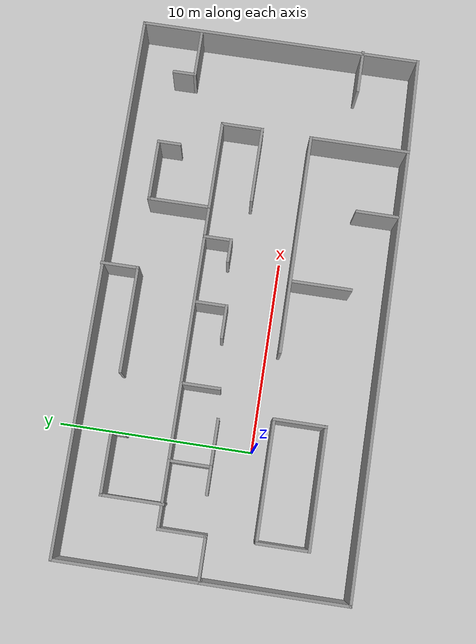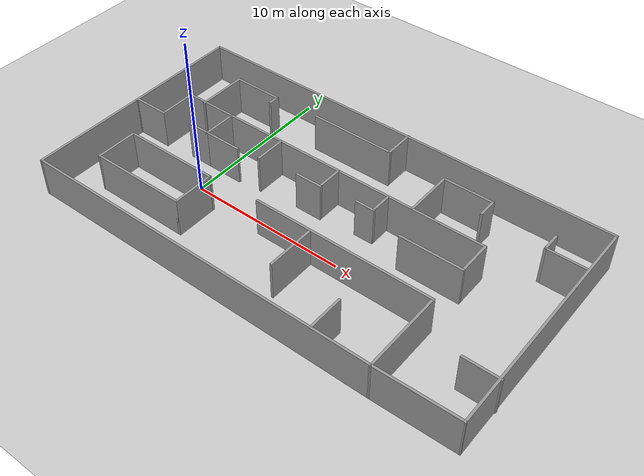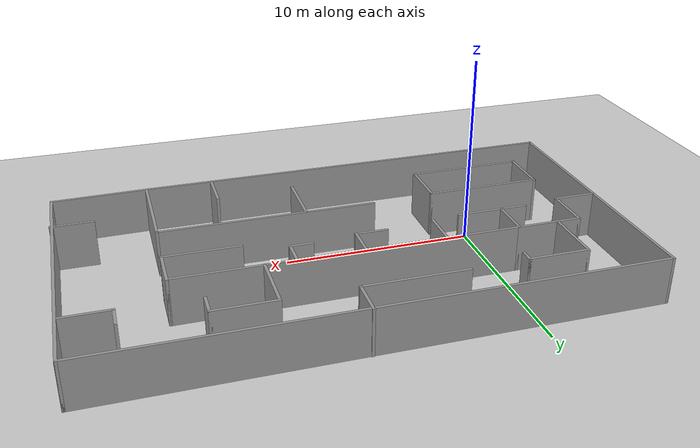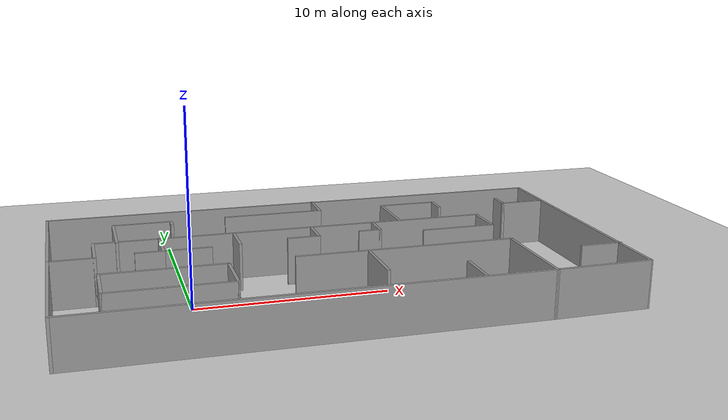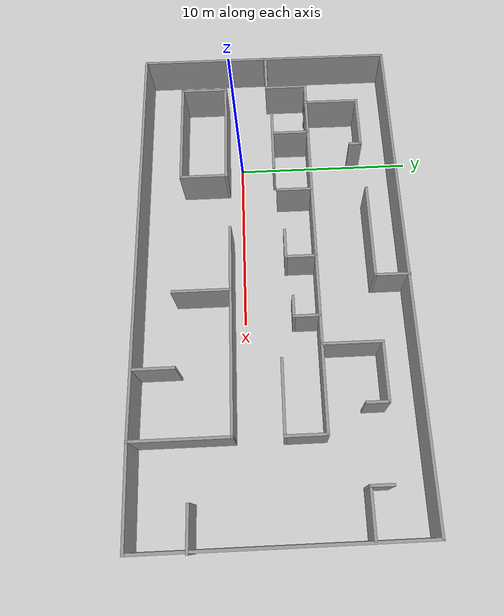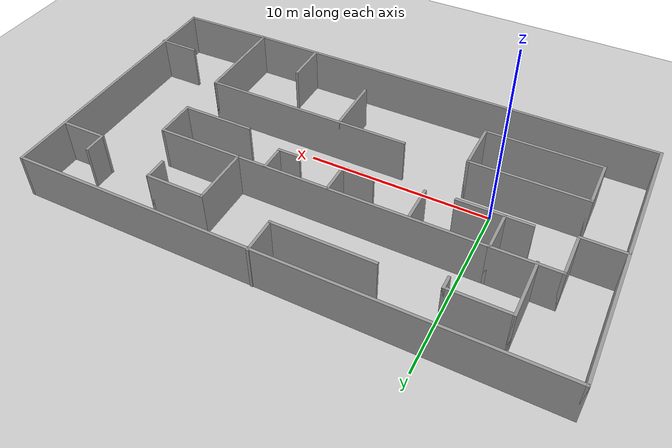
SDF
<?xml version='1.0'?>
<sdf version='1.6'>
<world name="my_map">
    <!-- A global light source -->
    <include>
      <uri>model://sun</uri>
    </include>
    <!-- A ground plane -->
    <include>
      <uri>model://ground_plane</uri>
    </include>

  <model name='map1_world'>
    <pose frame=''>7.43439 1.62187 0 0 -0 0</pose>
    <link name='Wall_0'>
      <collision name='Wall_0_Collision'>
        <geometry>
          <box>
            <size>2.75 0.15 2.5</size>
          </box>
        </geometry>
        <pose frame=''>0 0 1.25 0 -0 0</pose>
      </collision>
      <visual name='Wall_0_Visual'>
        <pose frame=''>0 0 1.25 0 -0 0</pose>
        <geometry>
          <box>
            <size>2.75 0.15 2.5</size>
          </box>
        </geometry>
        <material>
          <script>
            <uri>file://media/materials/scripts/gazebo.material</uri>
            <name>Gazebo/Grey</name>
          </script>
          <ambient>1 1 1 1</ambient>
        </material>
        <meta>
          <layer>0</layer>
        </meta>
      </visual>
      <pose frame=''>-11.8144 -3.75187 0 0 -0 1.5708</pose>
    </link>
    <link name='Wall_1'>
      <collision name='Wall_1_Collision'>
        <geometry>
          <box>
            <size>6.25 0.15 2.5</size>
          </box>
        </geometry>
        <pose frame=''>0 0 1.25 0 -0 0</pose>
      </collision>
      <visual name='Wall_1_Visual'>
        <pose frame=''>0 0 1.25 0 -0 0</pose>
        <geometry>
          <box>
            <size>6.25 0.15 2.5</size>
          </box>
        </geometry>
        <material>
          <script>
            <uri>file://media/materials/scripts/gazebo.material</uri>
            <name>Gazebo/Grey</name>
          </script>
          <ambient>1 1 1 1</ambient>
        </material>
        <meta>
          <layer>0</layer>
        </meta>
      </visual>
      <pose frame=''>-8.76439 -2.45187 0 0 -0 0</pose>
    </link>
    <link name='Wall_10'>
      <collision name='Wall_10_Collision'>
        <geometry>
          <box>
            <size>2.25 0.15 2.5</size>
          </box>
        </geometry>
        <pose frame=''>0 0 1.25 0 -0 0</pose>
      </collision>
      <visual name='Wall_10_Visual'>
        <pose frame=''>0 0 1.25 0 -0 0</pose>
        <geometry>
          <box>
            <size>2.25 0.15 2.5</size>
          </box>
        </geometry>
        <material>
          <script>
            <uri>file://media/materials/scripts/gazebo.material</uri>
            <name>Gazebo/Grey</name>
          </script>
          <ambient>1 1 1 1</ambient>
        </material>
        <meta>
          <layer>0</layer>
        </meta>
      </visual>
      <pose frame=''>-8.5074 1.35764 0 0 -0 -1.5708</pose>
    </link>
    <link name='Wall_11'>
      <collision name='Wall_11_Collision'>
        <geometry>
          <box>
            <size>1.5 0.15 2.5</size>
          </box>
        </geometry>
        <pose frame=''>0 0 1.25 0 -0 0</pose>
      </collision>
      <visual name='Wall_11_Visual'>
        <pose frame=''>0 0 1.25 0 -0 0</pose>
        <geometry>
          <box>
            <size>1.5 0.15 2.5</size>
          </box>
        </geometry>
        <material>
          <script>
            <uri>file://media/materials/scripts/gazebo.material</uri>
            <name>Gazebo/Grey</name>
          </script>
          <ambient>1 1 1 1</ambient>
        </material>
        <meta>
          <layer>0</layer>
        </meta>
      </visual>
      <pose frame=''>-9.1824 0.307639 0 0 -0 3.14159</pose>
    </link>
    <link name='Wall_13'>
      <collision name='Wall_13_Collision'>
        <geometry>
          <box>
            <size>2.5 0.15 2.5</size>
          </box>
        </geometry>
        <pose frame=''>0 0 1.25 0 -0 0</pose>
      </collision>
      <visual name='Wall_13_Visual'>
        <pose frame=''>0 0 1.25 0 -0 0</pose>
        <geometry>
          <box>
            <size>2.5 0.15 2.5</size>
          </box>
        </geometry>
        <material>
          <script>
            <uri>file://media/materials/scripts/gazebo.material</uri>
            <name>Gazebo/Grey</name>
          </script>
          <ambient>1 1 1 1</ambient>
        </material>
        <meta>
          <layer>0</layer>
        </meta>
      </visual>
      <pose frame=''>-7.3324 0.307639 0 0 -0 0</pose>
    </link>
    <link name='Wall_15'>
      <collision name='Wall_15_Collision'>
        <geometry>
          <box>
            <size>17.75 0.15 2.5</size>
          </box>
        </geometry>
        <pose frame=''>0 0 1.25 0 -0 0</pose>
      </collision>
      <visual name='Wall_15_Visual'>
        <pose frame=''>0 0 1.25 0 -0 0</pose>
        <geometry>
          <box>
            <size>17.75 0.15 2.5</size>
          </box>
        </geometry>
        <material>
          <script>
            <uri>file://media/materials/scripts/gazebo.material</uri>
            <name>Gazebo/Grey</name>
          </script>
          <ambient>1 1 1 1</ambient>
        </material>
        <meta>
          <layer>0</layer>
        </meta>
      </visual>
      <pose frame=''>0.2926 2.40764 0 0 -0 0</pose>
    </link>
    <link name='Wall_17'>
      <collision name='Wall_17_Collision'>
        <geometry>
          <box>
            <size>2 0.15 2.5</size>
          </box>
        </geometry>
        <pose frame=''>0 0 1.25 0 -0 0</pose>
      </collision>
      <visual name='Wall_17_Visual'>
        <pose frame=''>0 0 1.25 0 -0 0</pose>
        <geometry>
          <box>
            <size>2 0.15 2.5</size>
          </box>
        </geometry>
        <material>
          <script>
            <uri>file://media/materials/scripts/gazebo.material</uri>
            <name>Gazebo/Grey</name>
          </script>
          <ambient>1 1 1 1</ambient>
        </material>
        <meta>
          <layer>0</layer>
        </meta>
      </visual>
      <pose frame=''>-4.62738 1.39632 0 0 -0 -1.5708</pose>
    </link>
    <link name='Wall_19'>
      <collision name='Wall_19_Collision'>
        <geometry>
          <box>
            <size>1.75 0.15 2.5</size>
          </box>
        </geometry>
        <pose frame=''>0 0 1.25 0 -0 0</pose>
      </collision>
      <visual name='Wall_19_Visual'>
        <pose frame=''>0 0 1.25 0 -0 0</pose>
        <geometry>
          <box>
            <size>1.75 0.15 2.5</size>
          </box>
        </geometry>
        <material>
          <script>
            <uri>file://media/materials/scripts/gazebo.material</uri>
            <name>Gazebo/Grey</name>
          </script>
          <ambient>1 1 1 1</ambient>
        </material>
        <meta>
          <layer>0</layer>
        </meta>
      </visual>
      <pose frame=''>-0.436519 1.55191 0 0 -0 -1.5708</pose>
    </link>
    <link name='Wall_20'>
      <collision name='Wall_20_Collision'>
        <geometry>
          <box>
            <size>1.75 0.15 2.5</size>
          </box>
        </geometry>
        <pose frame=''>0 0 1.25 0 -0 0</pose>
      </collision>
      <visual name='Wall_20_Visual'>
        <pose frame=''>0 0 1.25 0 -0 0</pose>
        <geometry>
          <box>
            <size>1.75 0.15 2.5</size>
          </box>
        </geometry>
        <material>
          <script>
            <uri>file://media/materials/scripts/gazebo.material</uri>
            <name>Gazebo/Grey</name>
          </script>
          <ambient>1 1 1 1</ambient>
        </material>
        <meta>
          <layer>0</layer>
        </meta>
      </visual>
      <pose frame=''>-1.23652 0.751906 0 0 -0 3.14159</pose>
    </link>
    <link name='Wall_22'>
      <collision name='Wall_22_Collision'>
        <geometry>
          <box>
            <size>11.5 0.15 2.5</size>
          </box>
        </geometry>
        <pose frame=''>0 0 1.25 0 -0 0</pose>
      </collision>
      <visual name='Wall_22_Visual'>
        <pose frame=''>0 0 1.25 0 -0 0</pose>
        <geometry>
          <box>
            <size>11.5 0.15 2.5</size>
          </box>
        </geometry>
        <material>
          <script>
            <uri>file://media/materials/scripts/gazebo.material</uri>
            <name>Gazebo/Grey</name>
          </script>
          <ambient>1 1 1 1</ambient>
        </material>
        <meta>
          <layer>0</layer>
        </meta>
      </visual>
      <pose frame=''>3.34189 -2.26722 0 0 -0 0</pose>
    </link>
    <link name='Wall_23'>
      <collision name='Wall_23_Collision'>
        <geometry>
          <box>
            <size>5.25 0.15 2.5</size>
          </box>
        </geometry>
        <pose frame=''>0 0 1.25 0 -0 0</pose>
      </collision>
      <visual name='Wall_23_Visual'>
        <pose frame=''>0 0 1.25 0 -0 0</pose>
        <geometry>
          <box>
            <size>5.25 0.15 2.5</size>
          </box>
        </geometry>
        <material>
          <script>
            <uri>file://media/materials/scripts/gazebo.material</uri>
            <name>Gazebo/Grey</name>
          </script>
          <ambient>1 1 1 1</ambient>
        </material>
        <meta>
          <layer>0</layer>
        </meta>
      </visual>
      <pose frame=''>9.01689 -4.81722 0 0 -0 -1.5708</pose>
    </link>
    <link name='Wall_24'>
      <collision name='Wall_24_Collision'>
        <geometry>
          <box>
            <size>23.25 0.15 2.5</size>
          </box>
        </geometry>
        <pose frame=''>0 0 1.25 0 -0 0</pose>
      </collision>
      <visual name='Wall_24_Visual'>
        <pose frame=''>0 0 1.25 0 -0 0</pose>
        <geometry>
          <box>
            <size>23.25 0.15 2.5</size>
          </box>
        </geometry>
        <material>
          <script>
            <uri>file://media/materials/scripts/gazebo.material</uri>
            <name>Gazebo/Grey</name>
          </script>
          <ambient>1 1 1 1</ambient>
        </material>
        <meta>
          <layer>0</layer>
        </meta>
      </visual>
      <pose frame=''>-2.53311 -7.36722 0 0 -0 3.14159</pose>
    </link>
    <link name='Wall_25'>
      <collision name='Wall_25_Collision'>
        <geometry>
          <box>
            <size>7.5 0.15 2.5</size>
          </box>
        </geometry>
        <pose frame=''>0 0 1.25 0 -0 0</pose>
      </collision>
      <visual name='Wall_25_Visual'>
        <pose frame=''>0 0 1.25 0 -0 0</pose>
        <geometry>
          <box>
            <size>7.5 0.15 2.5</size>
          </box>
        </geometry>
        <material>
          <script>
            <uri>file://media/materials/scripts/gazebo.material</uri>
            <name>Gazebo/Grey</name>
          </script>
          <ambient>1 1 1 1</ambient>
        </material>
        <meta>
          <layer>0</layer>
        </meta>
      </visual>
      <pose frame=''>-14.0831 -3.69222 0 0 -0 1.5708</pose>
    </link>
    <link name='Wall_27'>
      <collision name='Wall_27_Collision'>
        <geometry>
          <box>
            <size>1.5 0.15 2.5</size>
          </box>
        </geometry>
        <pose frame=''>0 0 1.25 0 -0 0</pose>
      </collision>
      <visual name='Wall_27_Visual'>
        <pose frame=''>0 0 1.25 0 -0 0</pose>
        <geometry>
          <box>
            <size>1.5 0.15 2.5</size>
          </box>
        </geometry>
        <material>
          <script>
            <uri>file://media/materials/scripts/gazebo.material</uri>
            <name>Gazebo/Grey</name>
          </script>
          <ambient>1 1 1 1</ambient>
        </material>
        <meta>
          <layer>0</layer>
        </meta>
      </visual>
      <pose frame=''>2.98959 1.7075 0 0 -0 -1.5708</pose>
    </link>
    <link name='Wall_28'>
      <collision name='Wall_28_Collision'>
        <geometry>
          <box>
            <size>1.25 0.15 2.5</size>
          </box>
        </geometry>
        <pose frame=''>0 0 1.25 0 -0 0</pose>
      </collision>
      <visual name='Wall_28_Visual'>
        <pose frame=''>0 0 1.25 0 -0 0</pose>
        <geometry>
          <box>
            <size>1.25 0.15 2.5</size>
          </box>
        </geometry>
        <material>
          <script>
            <uri>file://media/materials/scripts/gazebo.material</uri>
            <name>Gazebo/Grey</name>
          </script>
          <ambient>1 1 1 1</ambient>
        </material>
        <meta>
          <layer>0</layer>
        </meta>
      </visual>
      <pose frame=''>2.43959 1.0325 0 0 -0 3.14159</pose>
    </link>
    <link name='Wall_30'>
      <collision name='Wall_30_Collision'>
        <geometry>
          <box>
            <size>2.25 0.15 2.5</size>
          </box>
        </geometry>
        <pose frame=''>0 0 1.25 0 -0 0</pose>
      </collision>
      <visual name='Wall_30_Visual'>
        <pose frame=''>0 0 1.25 0 -0 0</pose>
        <geometry>
          <box>
            <size>2.25 0.15 2.5</size>
          </box>
        </geometry>
        <material>
          <script>
            <uri>file://media/materials/scripts/gazebo.material</uri>
            <name>Gazebo/Grey</name>
          </script>
          <ambient>1 1 1 1</ambient>
        </material>
        <meta>
          <layer>0</layer>
        </meta>
      </visual>
      <pose frame=''>9.0926 1.35764 0 0 -0 -1.5708</pose>
    </link>
    <link name='Wall_31'>
      <collision name='Wall_31_Collision'>
        <geometry>
          <box>
            <size>4 0.15 2.5</size>
          </box>
        </geometry>
        <pose frame=''>0 0 1.25 0 -0 0</pose>
      </collision>
      <visual name='Wall_31_Visual'>
        <pose frame=''>0 0 1.25 0 -0 0</pose>
        <geometry>
          <box>
            <size>4 0.15 2.5</size>
          </box>
        </geometry>
        <material>
          <script>
            <uri>file://media/materials/scripts/gazebo.material</uri>
            <name>Gazebo/Grey</name>
          </script>
          <ambient>1 1 1 1</ambient>
        </material>
        <meta>
          <layer>0</layer>
        </meta>
      </visual>
      <pose frame=''>7.1676 0.307639 0 0 -0 3.14159</pose>
    </link>
    <link name='Wall_33'>
      <collision name='Wall_33_Collision'>
        <geometry>
          <box>
            <size>2.25 0.15 2.5</size>
          </box>
        </geometry>
        <pose frame=''>0 0 1.25 0 -0 0</pose>
      </collision>
      <visual name='Wall_33_Visual'>
        <pose frame=''>0 0 1.25 0 -0 0</pose>
        <geometry>
          <box>
            <size>2.25 0.15 2.5</size>
          </box>
        </geometry>
        <material>
          <script>
            <uri>file://media/materials/scripts/gazebo.material</uri>
            <name>Gazebo/Grey</name>
          </script>
          <ambient>1 1 1 1</ambient>
        </material>
        <meta>
          <layer>0</layer>
        </meta>
      </visual>
      <pose frame=''>5.46739 -6.20343 0 0 -0 1.5708</pose>
    </link>
    <link name='Wall_35'>
      <collision name='Wall_35_Collision'>
        <geometry>
          <box>
            <size>3.25 0.15 2.5</size>
          </box>
        </geometry>
        <pose frame=''>0 0 1.25 0 -0 0</pose>
      </collision>
      <visual name='Wall_35_Visual'>
        <pose frame=''>0 0 1.25 0 -0 0</pose>
        <geometry>
          <box>
            <size>3.25 0.15 2.5</size>
          </box>
        </geometry>
        <material>
          <script>
            <uri>file://media/materials/scripts/gazebo.material</uri>
            <name>Gazebo/Grey</name>
          </script>
          <ambient>1 1 1 1</ambient>
        </material>
        <meta>
          <layer>0</layer>
        </meta>
      </visual>
      <pose frame=''>1.33771 -3.81722 0 0 -0 -1.5708</pose>
    </link>
    <link name='Wall_37'>
      <collision name='Wall_37_Collision'>
        <geometry>
          <box>
            <size>7.5 0.15 2.5</size>
          </box>
        </geometry>
        <pose frame=''>0 0 1.25 0 -0 0</pose>
      </collision>
      <visual name='Wall_37_Visual'>
        <pose frame=''>0 0 1.25 0 -0 0</pose>
        <geometry>
          <box>
            <size>7.5 0.15 2.5</size>
          </box>
        </geometry>
        <material>
          <script>
            <uri>file://media/materials/scripts/gazebo.material</uri>
            <name>Gazebo/Grey</name>
          </script>
          <ambient>1 1 1 1</ambient>
        </material>
        <meta>
          <layer>0</layer>
        </meta>
      </visual>
      <pose frame=''>-14.0831 3.65778 0 0 -0 1.5708</pose>
    </link>
    <link name='Wall_38'>
      <collision name='Wall_38_Collision'>
        <geometry>
          <box>
            <size>28.25 0.15 2.5</size>
          </box>
        </geometry>
        <pose frame=''>0 0 1.25 0 -0 0</pose>
      </collision>
      <visual name='Wall_38_Visual'>
        <pose frame=''>0 0 1.25 0 -0 0</pose>
        <geometry>
          <box>
            <size>28.25 0.15 2.5</size>
          </box>
        </geometry>
        <material>
          <script>
            <uri>file://media/materials/scripts/gazebo.material</uri>
            <name>Gazebo/Grey</name>
          </script>
          <ambient>1 1 1 1</ambient>
        </material>
        <meta>
          <layer>0</layer>
        </meta>
      </visual>
      <pose frame=''>-0.033113 7.33278 0 0 -0 0</pose>
    </link>
    <link name='Wall_39'>
      <collision name='Wall_39_Collision'>
        <geometry>
          <box>
            <size>14.75 0.15 2.5</size>
          </box>
        </geometry>
        <pose frame=''>0 0 1.25 0 -0 0</pose>
      </collision>
      <visual name='Wall_39_Visual'>
        <pose frame=''>0 0 1.25 0 -0 0</pose>
        <geometry>
          <box>
            <size>14.75 0.15 2.5</size>
          </box>
        </geometry>
        <material>
          <script>
            <uri>file://media/materials/scripts/gazebo.material</uri>
            <name>Gazebo/Grey</name>
          </script>
          <ambient>1 1 1 1</ambient>
        </material>
        <meta>
          <layer>0</layer>
        </meta>
      </visual>
      <pose frame=''>14.0169 0.032781 0 0 -0 -1.5708</pose>
    </link>
    <link name='Wall_4'>
      <collision name='Wall_4_Collision'>
        <geometry>
          <box>
            <size>6.25 0.15 2.5</size>
          </box>
        </geometry>
        <pose frame=''>0 0 1.25 0 -0 0</pose>
      </collision>
      <visual name='Wall_4_Visual'>
        <pose frame=''>0 0 1.25 0 -0 0</pose>
        <geometry>
          <box>
            <size>6.25 0.15 2.5</size>
          </box>
        </geometry>
        <material>
          <script>
            <uri>file://media/materials/scripts/gazebo.material</uri>
            <name>Gazebo/Grey</name>
          </script>
          <ambient>1 1 1 1</ambient>
        </material>
        <meta>
          <layer>0</layer>
        </meta>
      </visual>
      <pose frame=''>-8.76439 -5.05187 0 0 -0 0</pose>
    </link>
    <link name='Wall_40'>
      <collision name='Wall_40_Collision'>
        <geometry>
          <box>
            <size>5.151 0.15 2.5</size>
          </box>
        </geometry>
        <pose frame=''>0 0 1.25 0 -0 0</pose>
      </collision>
      <visual name='Wall_40_Visual'>
        <pose frame=''>0 0 1.25 0 -0 0</pose>
        <geometry>
          <box>
            <size>5.151 0.15 2.5</size>
          </box>
        </geometry>
        <material>
          <script>
            <uri>file://media/materials/scripts/gazebo.material</uri>
            <name>Gazebo/Grey</name>
          </script>
          <ambient>1 1 1 1</ambient>
        </material>
        <meta>
          <layer>0</layer>
        </meta>
      </visual>
      <pose frame=''>11.5169 -7.31722 0 0 -0 -3.1216</pose>
    </link>
    <link name='Wall_42'>
      <collision name='Wall_42_Collision'>
        <geometry>
          <box>
            <size>3.25 0.15 2.5</size>
          </box>
        </geometry>
        <pose frame=''>0 0 1.25 0 -0 0</pose>
      </collision>
      <visual name='Wall_42_Visual'>
        <pose frame=''>0 0 1.25 0 -0 0</pose>
        <geometry>
          <box>
            <size>3.25 0.15 2.5</size>
          </box>
        </geometry>
        <material>
          <script>
            <uri>file://media/materials/scripts/gazebo.material</uri>
            <name>Gazebo/Grey</name>
          </script>
          <ambient>1 1 1 1</ambient>
        </material>
        <meta>
          <layer>0</layer>
        </meta>
      </visual>
      <pose frame=''>-10.6537 3.90191 0 0 -0 1.5708</pose>
    </link>
    <link name='Wall_43'>
      <collision name='Wall_43_Collision'>
        <geometry>
          <box>
            <size>3.25 0.15 2.5</size>
          </box>
        </geometry>
        <pose frame=''>0 0 1.25 0 -0 0</pose>
      </collision>
      <visual name='Wall_43_Visual'>
        <pose frame=''>0 0 1.25 0 -0 0</pose>
        <geometry>
          <box>
            <size>3.25 0.15 2.5</size>
          </box>
        </geometry>
        <material>
          <script>
            <uri>file://media/materials/scripts/gazebo.material</uri>
            <name>Gazebo/Grey</name>
          </script>
          <ambient>1 1 1 1</ambient>
        </material>
        <meta>
          <layer>0</layer>
        </meta>
      </visual>
      <pose frame=''>-9.10366 5.45191 0 0 -0 0</pose>
    </link>
    <link name='Wall_44'>
      <collision name='Wall_44_Collision'>
        <geometry>
          <box>
            <size>0.75 0.15 2.5</size>
          </box>
        </geometry>
        <pose frame=''>0 0 1.25 0 -0 0</pose>
      </collision>
      <visual name='Wall_44_Visual'>
        <pose frame=''>0 0 1.25 0 -0 0</pose>
        <geometry>
          <box>
            <size>0.75 0.15 2.5</size>
          </box>
        </geometry>
        <material>
          <script>
            <uri>file://media/materials/scripts/gazebo.material</uri>
            <name>Gazebo/Grey</name>
          </script>
          <ambient>1 1 1 1</ambient>
        </material>
        <meta>
          <layer>0</layer>
        </meta>
      </visual>
      <pose frame=''>-7.55366 5.15191 0 0 -0 -1.5708</pose>
    </link>
    <link name='Wall_46'>
      <collision name='Wall_46_Collision'>
        <geometry>
          <box>
            <size>2 0.15 2.5</size>
          </box>
        </geometry>
        <pose frame=''>0 0 1.25 0 -0 0</pose>
      </collision>
      <visual name='Wall_46_Visual'>
        <pose frame=''>0 0 1.25 0 -0 0</pose>
        <geometry>
          <box>
            <size>2 0.15 2.5</size>
          </box>
        </geometry>
        <material>
          <script>
            <uri>file://media/materials/scripts/gazebo.material</uri>
            <name>Gazebo/Grey</name>
          </script>
          <ambient>1 1 1 1</ambient>
        </material>
        <meta>
          <layer>0</layer>
        </meta>
      </visual>
      <pose frame=''>0.84827 6.4437 0 0 -0 -1.5708</pose>
    </link>
    <link name='Wall_47'>
      <collision name='Wall_47_Collision'>
        <geometry>
          <box>
            <size>5.5 0.15 2.5</size>
          </box>
        </geometry>
        <pose frame=''>0 0 1.25 0 -0 0</pose>
      </collision>
      <visual name='Wall_47_Visual'>
        <pose frame=''>0 0 1.25 0 -0 0</pose>
        <geometry>
          <box>
            <size>5.5 0.15 2.5</size>
          </box>
        </geometry>
        <material>
          <script>
            <uri>file://media/materials/scripts/gazebo.material</uri>
            <name>Gazebo/Grey</name>
          </script>
          <ambient>1 1 1 1</ambient>
        </material>
        <meta>
          <layer>0</layer>
        </meta>
      </visual>
      <pose frame=''>-1.82673 5.5187 0 0 -0 3.14159</pose>
    </link>
    <link name='Wall_49'>
      <collision name='Wall_49_Collision'>
        <geometry>
          <box>
            <size>3.25 0.15 2.5</size>
          </box>
        </geometry>
        <pose frame=''>0 0 1.25 0 -0 0</pose>
      </collision>
      <visual name='Wall_49_Visual'>
        <pose frame=''>0 0 1.25 0 -0 0</pose>
        <geometry>
          <box>
            <size>3.25 0.15 2.5</size>
          </box>
        </geometry>
        <material>
          <script>
            <uri>file://media/materials/scripts/gazebo.material</uri>
            <name>Gazebo/Grey</name>
          </script>
          <ambient>1 1 1 1</ambient>
        </material>
        <meta>
          <layer>0</layer>
        </meta>
      </visual>
      <pose frame=''>4.54969 3.99368 0 0 -0 1.5708</pose>
    </link>
    <link name='Wall_5'>
      <collision name='Wall_5_Collision'>
        <geometry>
          <box>
            <size>2.75 0.15 2.5</size>
          </box>
        </geometry>
        <pose frame=''>0 0 1.25 0 -0 0</pose>
      </collision>
      <visual name='Wall_5_Visual'>
        <pose frame=''>0 0 1.25 0 -0 0</pose>
        <geometry>
          <box>
            <size>2.75 0.15 2.5</size>
          </box>
        </geometry>
        <material>
          <script>
            <uri>file://media/materials/scripts/gazebo.material</uri>
            <name>Gazebo/Grey</name>
          </script>
          <ambient>1 1 1 1</ambient>
        </material>
        <meta>
          <layer>0</layer>
        </meta>
      </visual>
      <pose frame=''>-5.71439 -3.75187 0 0 -0 1.5708</pose>
    </link>
    <link name='Wall_50'>
      <collision name='Wall_50_Collision'>
        <geometry>
          <box>
            <size>3.25 0.15 2.5</size>
          </box>
        </geometry>
        <pose frame=''>0 0 1.25 0 -0 0</pose>
      </collision>
      <visual name='Wall_50_Visual'>
        <pose frame=''>0 0 1.25 0 -0 0</pose>
        <geometry>
          <box>
            <size>3.25 0.15 2.5</size>
          </box>
        </geometry>
        <material>
          <script>
            <uri>file://media/materials/scripts/gazebo.material</uri>
            <name>Gazebo/Grey</name>
          </script>
          <ambient>1 1 1 1</ambient>
        </material>
        <meta>
          <layer>0</layer>
        </meta>
      </visual>
      <pose frame=''>6.09969 5.54368 0 0 -0 0</pose>
    </link>
    <link name='Wall_51'>
      <collision name='Wall_51_Collision'>
        <geometry>
          <box>
            <size>1.25 0.15 2.5</size>
          </box>
        </geometry>
        <pose frame=''>0 0 1.25 0 -0 0</pose>
      </collision>
      <visual name='Wall_51_Visual'>
        <pose frame=''>0 0 1.25 0 -0 0</pose>
        <geometry>
          <box>
            <size>1.25 0.15 2.5</size>
          </box>
        </geometry>
        <material>
          <script>
            <uri>file://media/materials/scripts/gazebo.material</uri>
            <name>Gazebo/Grey</name>
          </script>
          <ambient>1 1 1 1</ambient>
        </material>
        <meta>
          <layer>0</layer>
        </meta>
      </visual>
      <pose frame=''>7.64969 4.99368 0 0 -0 -1.5708</pose>
    </link>
    <link name='Wall_53'>
      <collision name='Wall_53_Collision'>
        <geometry>
          <box>
            <size>2.25 0.15 2.5</size>
          </box>
        </geometry>
        <pose frame=''>0 0 1.25 0 -0 0</pose>
      </collision>
      <visual name='Wall_53_Visual'>
        <pose frame=''>0 0 1.25 0 -0 0</pose>
        <geometry>
          <box>
            <size>2.25 0.15 2.5</size>
          </box>
        </geometry>
        <material>
          <script>
            <uri>file://media/materials/scripts/gazebo.material</uri>
            <name>Gazebo/Grey</name>
          </script>
          <ambient>1 1 1 1</ambient>
        </material>
        <meta>
          <layer>0</layer>
        </meta>
      </visual>
      <pose frame=''>13.0331 -4.34735 0 0 -0 0</pose>
    </link>
    <link name='Wall_55'>
      <collision name='Wall_55_Collision'>
        <geometry>
          <box>
            <size>2.5 0.15 2.5</size>
          </box>
        </geometry>
        <pose frame=''>0 0 1.25 0 -0 0</pose>
      </collision>
      <visual name='Wall_55_Visual'>
        <pose frame=''>0 0 1.25 0 -0 0</pose>
        <geometry>
          <box>
            <size>2.5 0.15 2.5</size>
          </box>
        </geometry>
        <material>
          <script>
            <uri>file://media/materials/scripts/gazebo.material</uri>
            <name>Gazebo/Grey</name>
          </script>
          <ambient>1 1 1 1</ambient>
        </material>
        <meta>
          <layer>0</layer>
        </meta>
      </visual>
      <pose frame=''>12.7353 4.2485 0 0 -0 3.14159</pose>
    </link>
    <link name='Wall_56'>
      <collision name='Wall_56_Collision'>
        <geometry>
          <box>
            <size>1.25 0.15 2.5</size>
          </box>
        </geometry>
        <pose frame=''>0 0 1.25 0 -0 0</pose>
      </collision>
      <visual name='Wall_56_Visual'>
        <pose frame=''>0 0 1.25 0 -0 0</pose>
        <geometry>
          <box>
            <size>1.25 0.15 2.5</size>
          </box>
        </geometry>
        <material>
          <script>
            <uri>file://media/materials/scripts/gazebo.material</uri>
            <name>Gazebo/Grey</name>
          </script>
          <ambient>1 1 1 1</ambient>
        </material>
        <meta>
          <layer>0</layer>
        </meta>
      </visual>
      <pose frame=''>11.5603 4.7985 0 0 -0 1.5708</pose>
    </link>
    <link name='Wall_7'>
      <collision name='Wall_7_Collision'>
        <geometry>
          <box>
            <size>2.25 0.15 2.5</size>
          </box>
        </geometry>
        <pose frame=''>0 0 1.25 0 -0 0</pose>
      </collision>
      <visual name='Wall_7_Visual'>
        <pose frame=''>0 0 1.25 0 -0 0</pose>
        <geometry>
          <box>
            <size>2.25 0.15 2.5</size>
          </box>
        </geometry>
        <material>
          <script>
            <uri>file://media/materials/scripts/gazebo.material</uri>
            <name>Gazebo/Grey</name>
          </script>
          <ambient>1 1 1 1</ambient>
        </material>
        <meta>
          <layer>0</layer>
        </meta>
      </visual>
      <pose frame=''>-12.9074 0.057639 0 0 -0 0</pose>
    </link>
    <link name='Wall_8'>
      <collision name='Wall_8_Collision'>
        <geometry>
          <box>
            <size>2.5 0.15 2.5</size>
          </box>
        </geometry>
        <pose frame=''>0 0 1.25 0 -0 0</pose>
      </collision>
      <visual name='Wall_8_Visual'>
        <pose frame=''>0 0 1.25 0 -0 0</pose>
        <geometry>
          <box>
            <size>2.5 0.15 2.5</size>
          </box>
        </geometry>
        <material>
          <script>
            <uri>file://media/materials/scripts/gazebo.material</uri>
            <name>Gazebo/Grey</name>
          </script>
          <ambient>1 1 1 1</ambient>
        </material>
        <meta>
          <layer>0</layer>
        </meta>
      </visual>
      <pose frame=''>-11.8574 1.23264 0 0 -0 1.5708</pose>
    </link>
    <link name='Wall_9'>
      <collision name='Wall_9_Collision'>
        <geometry>
          <box>
            <size>3.5 0.15 2.5</size>
          </box>
        </geometry>
        <pose frame=''>0 0 1.25 0 -0 0</pose>
      </collision>
      <visual name='Wall_9_Visual'>
        <pose frame=''>0 0 1.25 0 -0 0</pose>
        <geometry>
          <box>
            <size>3.5 0.15 2.5</size>
          </box>
        </geometry>
        <material>
          <script>
            <uri>file://media/materials/scripts/gazebo.material</uri>
            <name>Gazebo/Grey</name>
          </script>
          <ambient>1 1 1 1</ambient>
        </material>
        <meta>
          <layer>0</layer>
        </meta>
      </visual>
      <pose frame=''>-10.1824 2.40764 0 0 -0 0</pose>
    </link>
    <static>1</static>
  </model>
</world>
</sdf>
